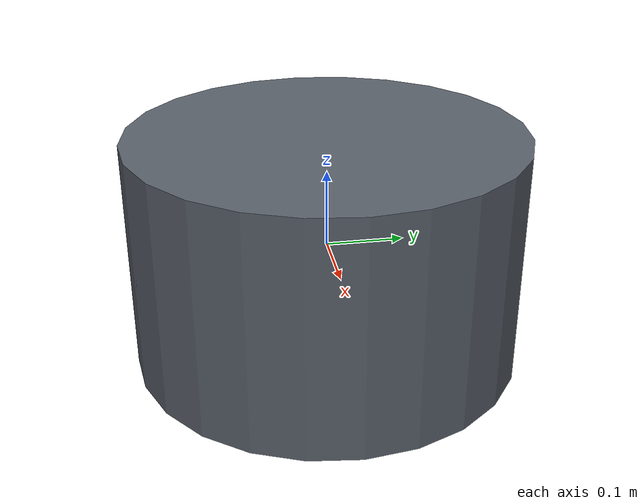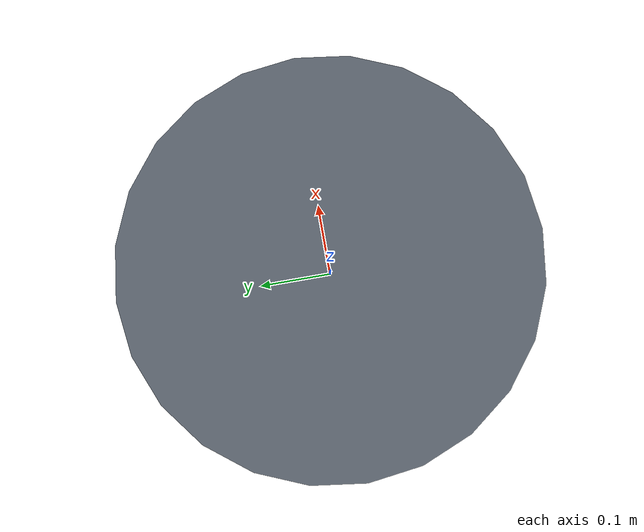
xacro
<?xml version="1.0"?>
<robot xmlns:xacro="http://www.ros.org/wiki/xacro" name="grobot">
  <xacro:arg name="base_diameter" default="0.505"/>
  <xacro:arg name="base_height" default="0.30"/>
  <xacro:arg name="wheel_radius" default="0.0695"/>
  <xacro:arg name="wheel_width" default="0.045"/>
  <xacro:arg name="track_width" default="0.44"/>
  <xacro:arg name="lidar_x" default="0.18"/>
  <xacro:arg name="lidar_y" default="0.0"/>
  <xacro:arg name="lidar_z" default="0.05"/>
  <xacro:arg name="lidar_yaw" default="0.0"/>

  <xacro:property name="base_diameter" value="${float('$(arg base_diameter)')}"/>
  <xacro:property name="base_radius" value="${base_diameter / 2.0}"/>
  <xacro:property name="base_height" value="${float('$(arg base_height)')}"/>
  <xacro:property name="wheel_radius" value="${float('$(arg wheel_radius)')}"/>
  <xacro:property name="wheel_width" value="${float('$(arg wheel_width)')}"/>
  <xacro:property name="track_width" value="${float('$(arg track_width)')}"/>
  <xacro:property name="lidar_x" value="${float('$(arg lidar_x)')}"/>
  <xacro:property name="lidar_y" value="${float('$(arg lidar_y)')}"/>
  <xacro:property name="lidar_z" value="${float('$(arg lidar_z)')}"/>
  <xacro:property name="lidar_yaw" value="${float('$(arg lidar_yaw)')}"/>

  <material name="body_gray">
    <color rgba="0.35 0.38 0.42 1.0"/>
  </material>
  <material name="wheel_black">
    <color rgba="0.03 0.03 0.03 1.0"/>
  </material>
  <material name="lidar_blue">
    <color rgba="0.05 0.25 0.75 1.0"/>
  </material>

  <link name="base_link">
    <visual>
      <origin xyz="0 0 0" rpy="0 0 0"/>
      <geometry>
        <cylinder radius="${base_radius}" length="${base_height}"/>
      </geometry>
      <material name="body_gray"/>
    </visual>
    <collision>
      <origin xyz="0 0 0" rpy="0 0 0"/>
      <geometry>
        <cylinder radius="${base_radius}" length="${base_height}"/>
      </geometry>
    </collision>
  </link>

  <link name="base_footprint"/>

  <joint name="base_footprint_joint" type="fixed">
    <parent link="base_link"/>
    <child link="base_footprint"/>
    <origin xyz="0 0 0" rpy="0 0 0"/>
  </joint>

  <link name="left_wheel_link">
    <visual>
      <origin xyz="0 0 0" rpy="1.57079632679 0 0"/>
      <geometry>
        <cylinder radius="${wheel_radius}" length="${wheel_width}"/>
      </geometry>
      <material name="wheel_black"/>
    </visual>
  </link>

  <joint name="left_wheel_joint" type="fixed">
    <parent link="base_link"/>
    <child link="left_wheel_link"/>
    <origin xyz="0 ${track_width / 2.0} 0" rpy="0 0 0"/>
  </joint>

  <link name="right_wheel_link">
    <visual>
      <origin xyz="0 0 0" rpy="1.57079632679 0 0"/>
      <geometry>
        <cylinder radius="${wheel_radius}" length="${wheel_width}"/>
      </geometry>
      <material name="wheel_black"/>
    </visual>
  </link>

  <joint name="right_wheel_joint" type="fixed">
    <parent link="base_link"/>
    <child link="right_wheel_link"/>
    <origin xyz="0 ${-track_width / 2.0} 0" rpy="0 0 0"/>
  </joint>

  <link name="scan">
    <visual>
      <origin xyz="0 0 0.025" rpy="0 0 0"/>
      <geometry>
        <cylinder radius="0.045" length="0.05"/>
      </geometry>
      <material name="lidar_blue"/>
    </visual>
  </link>

  <joint name="scan_joint" type="fixed">
    <parent link="base_link"/>
    <child link="scan"/>
    <origin xyz="${lidar_x} ${lidar_y} ${lidar_z}" rpy="0 0 ${lidar_yaw}"/>
  </joint>
</robot>
